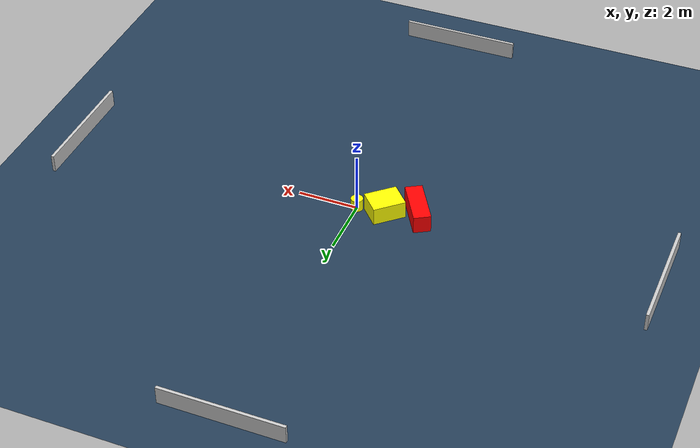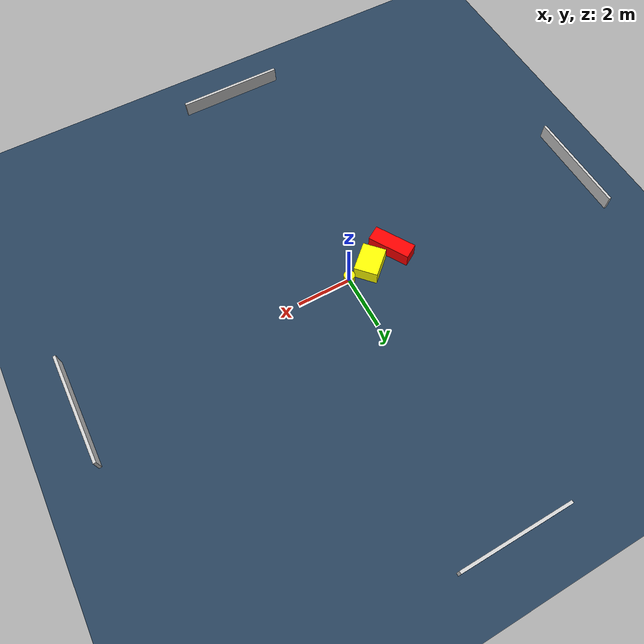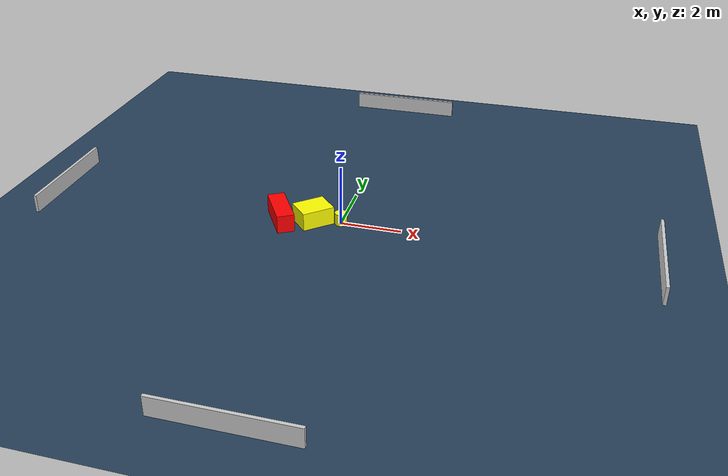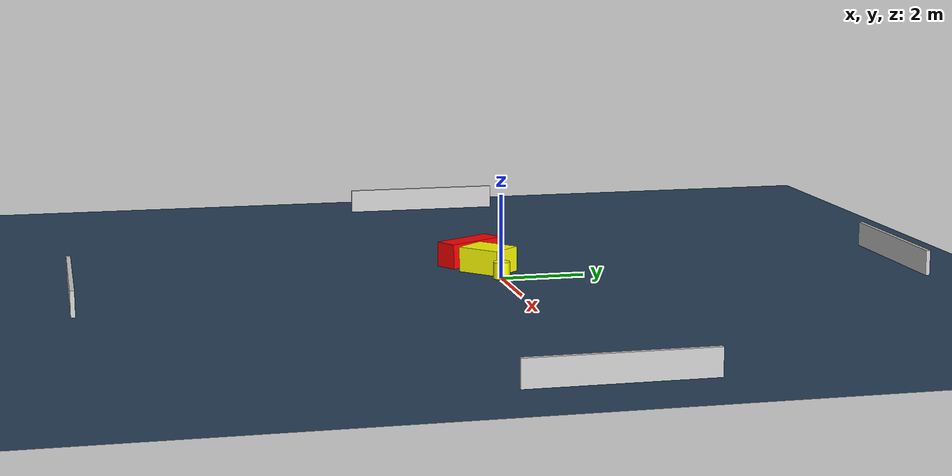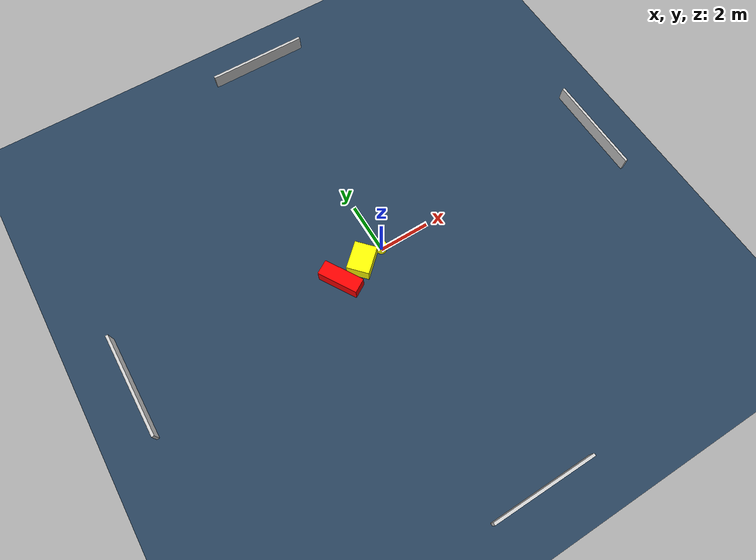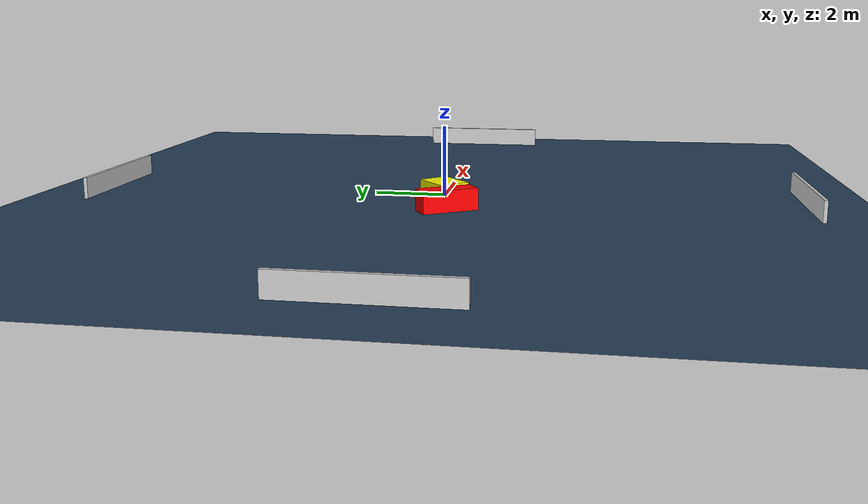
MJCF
<?xml version="1.0" ?>
<mujoco model="generated_environment">
  <option timestep="0.01" integrator="RK4" cone="elliptic"/>
  <default>
    <geom density="1"/>
  </default>
  <asset>
    <texture builtin="gradient" height="3072" name="skybox" rgb1="0.3 0.5 0.7" rgb2="0 0 0" type="skybox" width="512"/>
    <texture builtin="checker" height="300" name="groundplane" rgb1="0.2 0.3 0.4" rgb2="0.1 0.2 0.3" type="2d" width="300"/>
    <material name="groundplane" reflectance="0.2" texrepeat="5 5" texture="groundplane"/>
  </asset>
  <worldbody>
    <light dir="0 0 -1" directional="true" pos="0 0 1.5"/>
    <geom condim="3" friction="0.5 0.005 0.001" material="groundplane" name="floor" pos="0 0 0" size="0 0 0.05" type="plane"/>
    <body name="walls">
      <geom name="wall_1" condim="4" pos="-10.0 0.0 0.3" rgba="0.800000011920929 0.800000011920929 0.800000011920929 1.0" size="0.05 2.0 0.3" type="box"/>
      <geom name="wall_2" condim="4" pos="10.0 0.0 0.3" rgba="0.800000011920929 0.800000011920929 0.800000011920929 1.0" size="0.05 2.0 0.3" type="box"/>
      <geom name="wall_3" condim="4" pos="0.0 -10.0 0.3" rgba="0.800000011920929 0.800000011920929 0.800000011920929 1.0" size="2.0 0.05 0.3" type="box"/>
      <geom name="wall_4" condim="4" pos="0.0 10.0 0.3" rgba="0.800000011920929 0.800000011920929 0.800000011920929 1.0" size="2.0 0.05 0.3" type="box"/>
    </body>
    <body name="robot">
      <joint name="joint_x" type="slide" pos="0 0 0" axis="1 0 0"/>
      <joint name="joint_y" type="slide" pos="0 0 0" axis="0 1 0"/>
      <geom name="robot" type="cylinder" pos="0.0 0.0 0.2" size="0.2 0.2 0.0" mass="5.0" friction="1.0 0.005 0.0001" condim="4" rgba="1.0 1.0 0.0 1.0"/>
    </body>
    <body name="obstacle_1_movable">
      <geom name="obstacle_1_movable" condim="4" pos="-0.909380031772386 -0.11419388484874693 0.3" euler="0 0 42.46471673395288" friction="0.0 0.005 0.001" rgba="1.0 1.0 0.0 1.0" size="0.5479001385203535 0.4323905049295831 0.3" type="box" mass="0.1"/>
      <joint type="free"/>
    </body>
    <body name="obstacle_2_static">
      <geom name="obstacle_2_static" condim="4" pos="-1.9442052782710222 -0.3505814133914446 0.3" euler="0 0 30.81108133085722" friction="0.0 0.005 0.001" rgba="1.0 0.0 0.0 1.0" size="0.28505924565128005 0.7900053229748312 0.3" type="box"/>
    </body>
  </worldbody>
  <actuator>
    <motor name="actuator_x" joint="joint_x" gear="1" ctrlrange="-1 1"/>
    <motor name="actuator_y" joint="joint_y" gear="1" ctrlrange="-1 1"/>
  </actuator>
</mujoco>
